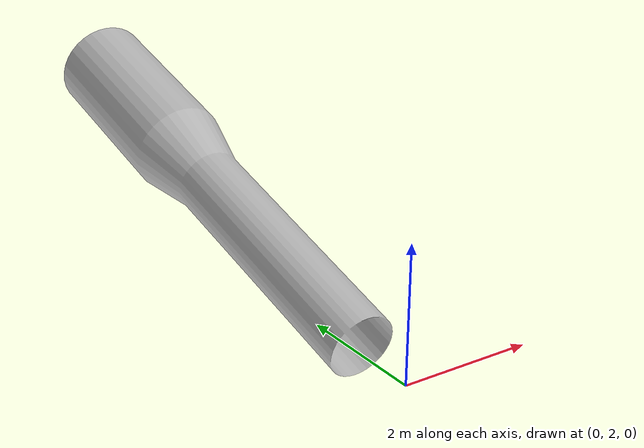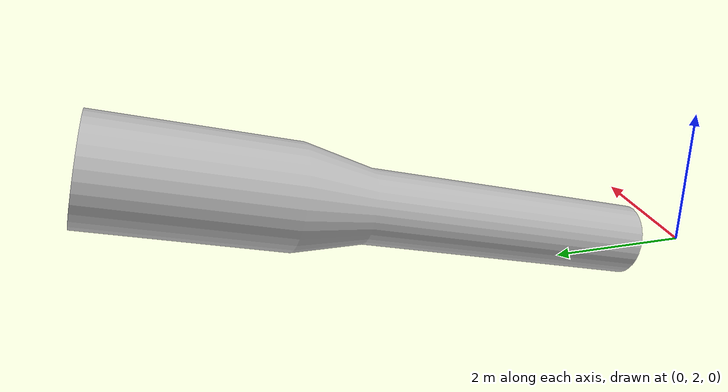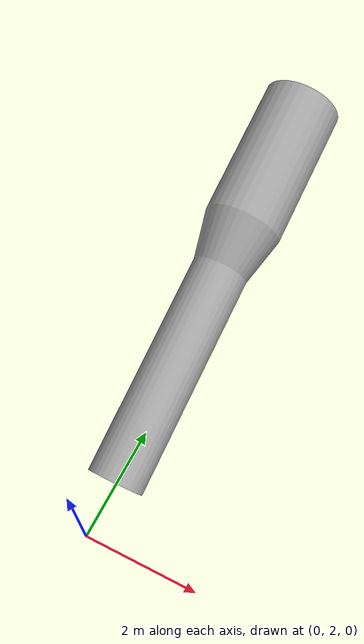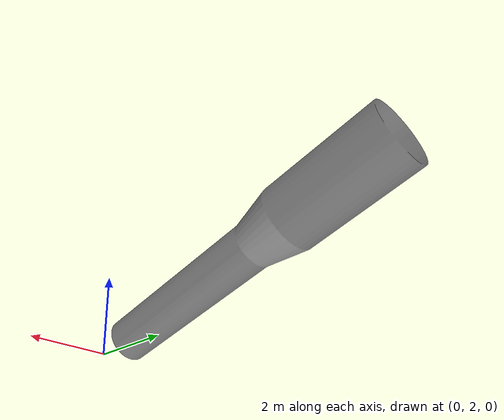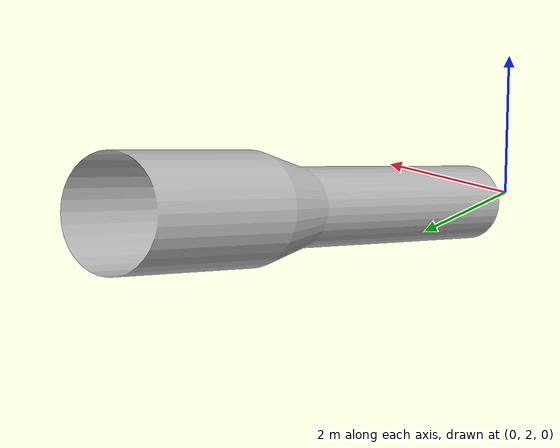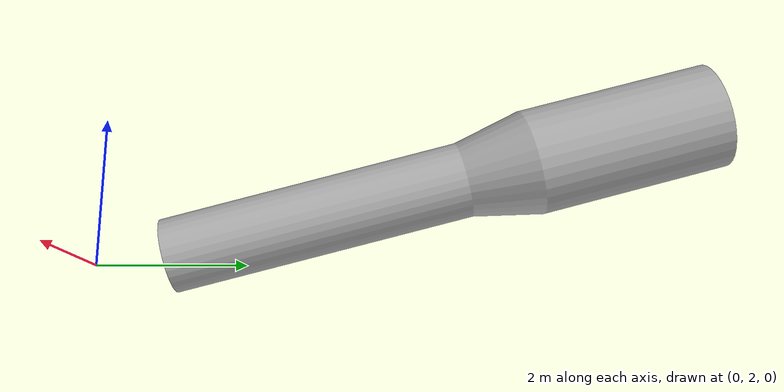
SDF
<?xml version="1.0" ?>
<sdf version="1.4">

<model name="tunnel">
        <static>true</static>
	<link name="link">
	<pose>0.0 0.1 0.0 0 0 0</pose>
		<collision name="collision">
			<geometry>
		    	    <mesh>
				<uri>model://tunnel/mesh/gasdotto.stl</uri>
				<scale>1 1 1</scale>
			    </mesh>
			</geometry>
		</collision>

		<visual name="visual">
			<geometry>
			    <mesh>
				<uri>model://tunnel/mesh/gasdotto.stl</uri>
				<scale>1 1 1</scale>
			    </mesh>
			</geometry>
		</visual>
	</link>
</model>
</sdf>
